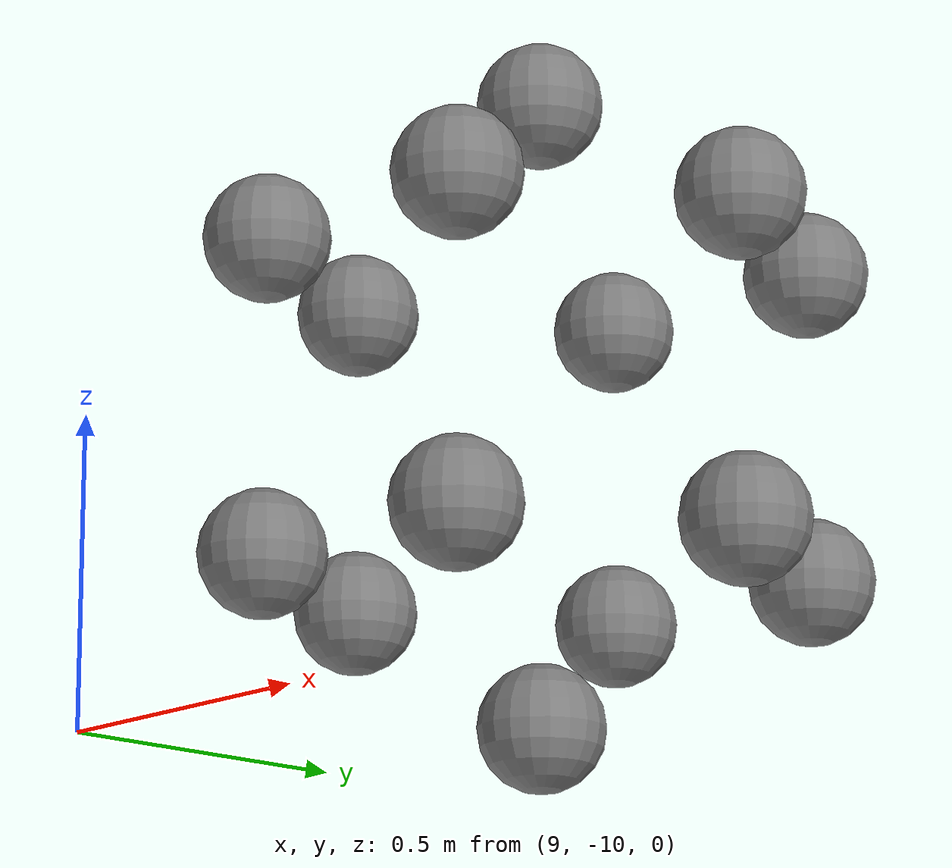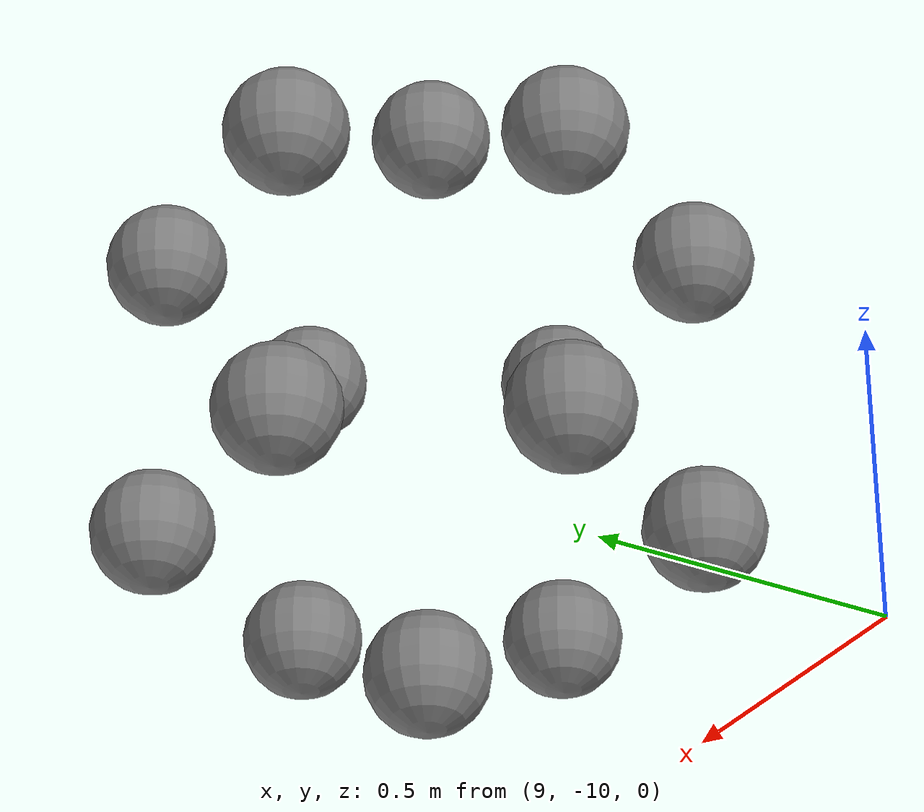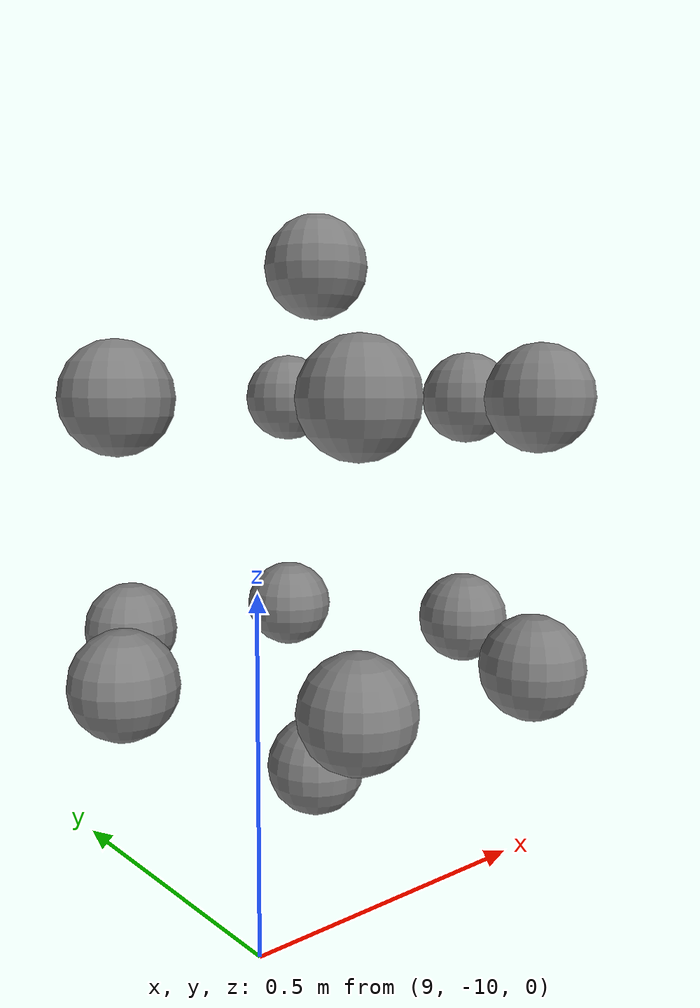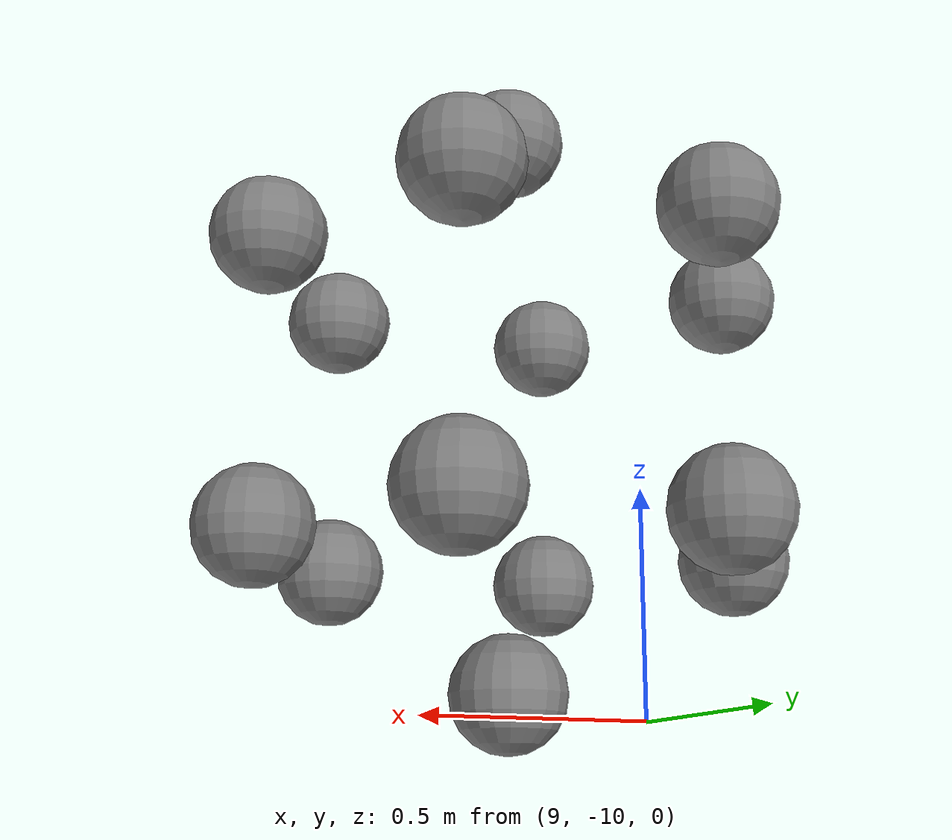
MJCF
<mujoco model="unnamed_model">
  <default>
    <default class="/"/>
  </default>
  <worldbody>
    <geom name="point_mass_0" class="/" type="sphere" size="0.10000000000000001" mass="0.01" pos="9.5 -9.5 0"/>
    <geom name="point_mass_1" class="/" type="sphere" size="0.10000000000000001" mass="0.01" pos="9.0670003890991211 -9.5 0.25"/>
    <geom name="point_mass_2" class="/" type="sphere" size="0.10000000000000001" mass="0.01" pos="9.2829999923706055 -9.125 0.25"/>
    <geom name="point_mass_3" class="/" type="sphere" size="0.10000000000000001" mass="0.01" pos="9.7170000076293945 -9.875 0.75"/>
    <geom name="point_mass_4" class="/" type="sphere" size="0.10000000000000001" mass="0.01" pos="9.9329996109008789 -9.5 0.75"/>
    <geom name="point_mass_5" class="/" type="sphere" size="0.10000000000000001" mass="0.01" pos="9.5 -9.5 1"/>
    <geom name="point_mass_6" class="/" type="sphere" size="0.10000000000000001" mass="0.01" pos="9.7170000076293945 -9.125 0.75"/>
    <geom name="point_mass_7" class="/" type="sphere" size="0.10000000000000001" mass="0.01" pos="9.7170000076293945 -9.875 0.25"/>
    <geom name="point_mass_8" class="/" type="sphere" size="0.10000000000000001" mass="0.01" pos="9.9329996109008789 -9.5 0.25"/>
    <geom name="point_mass_9" class="/" type="sphere" size="0.10000000000000001" mass="0.01" pos="9.2829999923706055 -9.125 0.75"/>
    <geom name="point_mass_10" class="/" type="sphere" size="0.10000000000000001" mass="0.01" pos="9.7170000076293945 -9.125 0.25"/>
    <geom name="point_mass_11" class="/" type="sphere" size="0.10000000000000001" mass="0.01" pos="9.0670003890991211 -9.5 0.75"/>
    <geom name="point_mass_12" class="/" type="sphere" size="0.10000000000000001" mass="0.01" pos="9.2829999923706055 -9.875 0.25"/>
    <geom name="point_mass_13" class="/" type="sphere" size="0.10000000000000001" mass="0.01" pos="9.2829999923706055 -9.875 0.75"/>
  </worldbody>
</mujoco>
